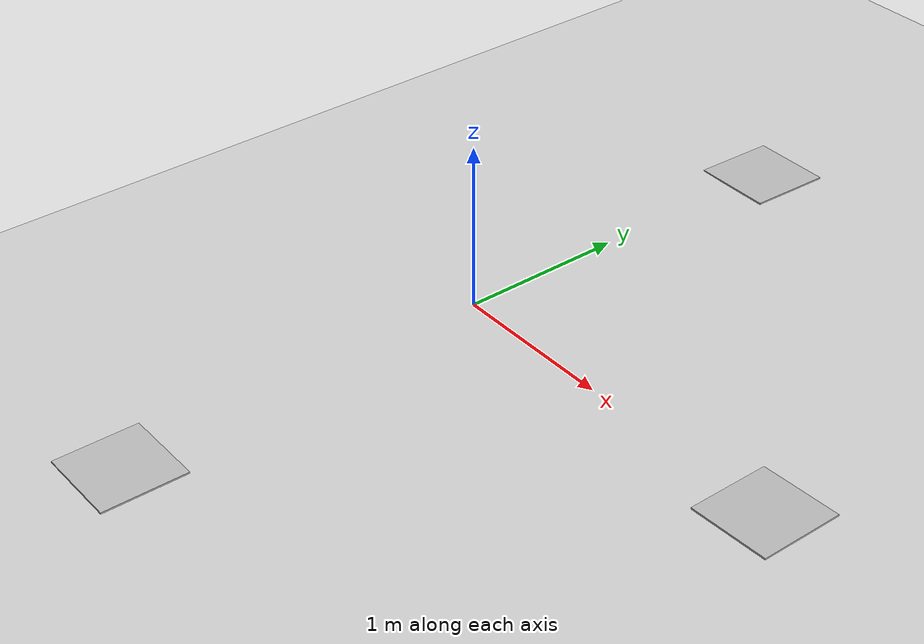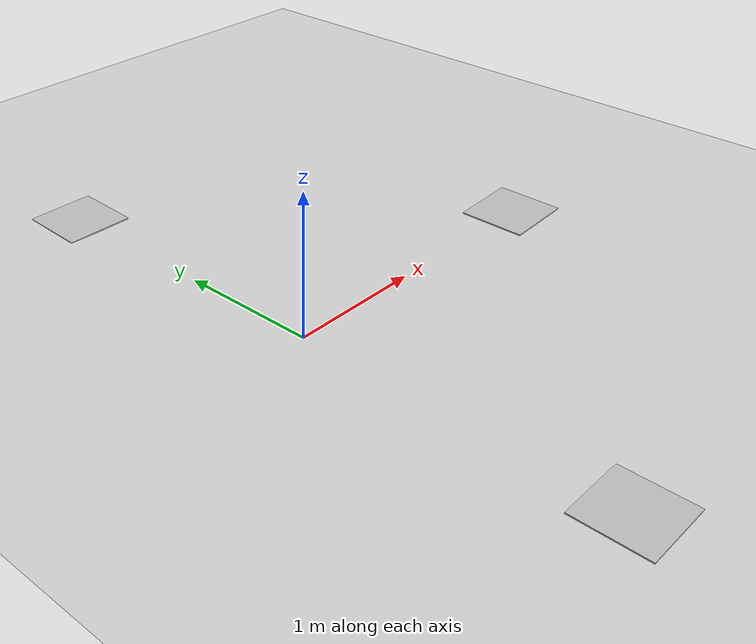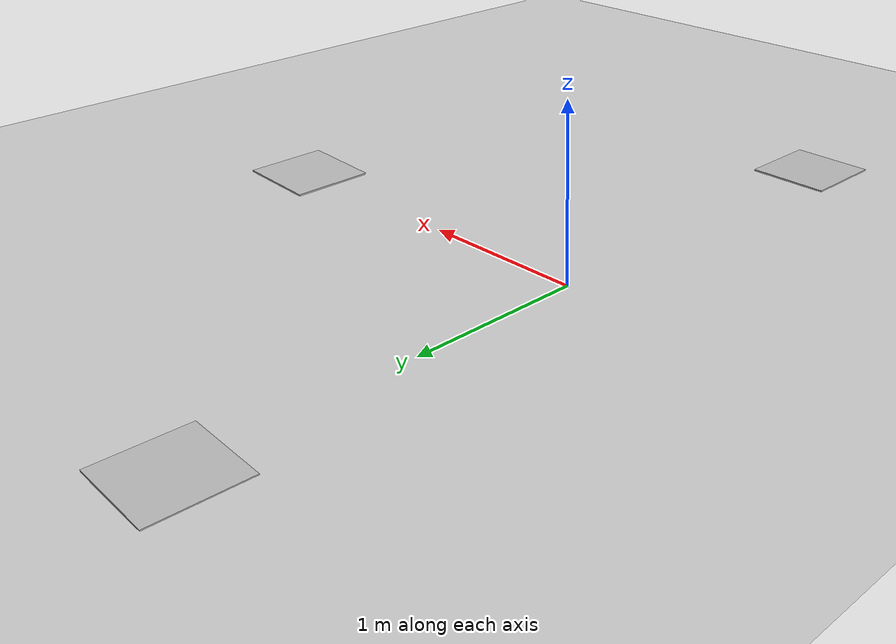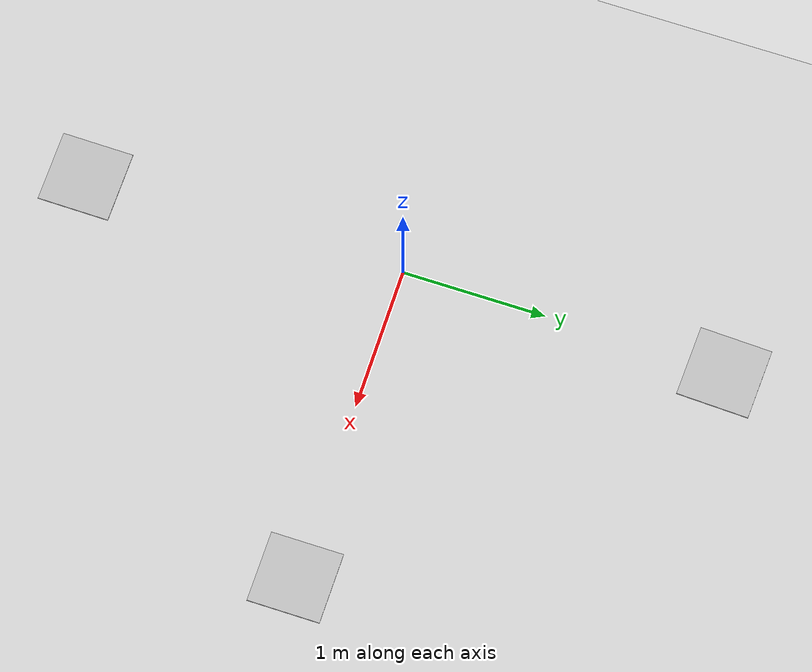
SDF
<sdf version="1.6">
 <world name="testbed">
  <light name="sun" type="directional">
   <pose>0 0 10 0 -0 0</pose>
   <diffuse>0.8 0.8 0.8 1</diffuse>
   <specular>0.1 0.1 0.1 1</specular>
   <attenuation>
    <range>1000</range>
    <constant>0.9</constant>
    <linear>0.01</linear>
    <quadratic>0.001</quadratic>
   </attenuation>
   <direction>-0.5 0.5 -1</direction>
  </light>
  <model name="ground_plane">
   <static>1</static>
   <link name="link">
    <collision name="collision">
     <geometry><plane><normal>0 0 1</normal><size>100 100</size></plane></geometry>
     <surface><friction><ode><mu>100</mu><mu2>50</mu2></ode></friction></surface>
    </collision>
    <visual name="visual">
     <cast_shadows>0</cast_shadows>
     <geometry><plane><normal>0 0 1</normal><size>100 100</size></plane></geometry>
     <material>
      <script><uri>file://media/materials/scripts/gazebo.material</uri><name>Gazebo/Grey</name></script>
     </material>
    </visual>
   </link>
  </model>
  <gravity>0 0 -9.8</gravity>
  <magnetic_field>6e-06 2.3e-05 -4.2e-05</magnetic_field>
  <atmosphere type="adiabatic"/>
  <physics name="default_physics" default="0" type="ode">
   <max_step_size>0.001</max_step_size>
   <real_time_factor>1</real_time_factor>
   <real_time_update_rate>1000</real_time_update_rate>
  </physics>
  <scene><ambient>0.4 0.4 0.4 1</ambient><background>0.7 0.7 0.7 1</background><shadows>1</shadows></scene>
  <spherical_coordinates>
   <surface_model>EARTH_WGS84</surface_model>
   <latitude_deg>0</latitude_deg>
   <longitude_deg>0</longitude_deg>
   <elevation>0</elevation>
   <heading_deg>0</heading_deg>
  </spherical_coordinates>
  <model name="Marker0">
   <static>1</static>
   <link name="link">
    <visual name="visual">
     <geometry><mesh><uri>model://marker0/meshes/Marker0.dae</uri><scale>1 1 1</scale></mesh></geometry>
    </visual>
   </link>
   <pose>2 0 0 0 1.52388 0</pose>
  </model>
  <model name="Marker0_0">
   <static>1</static>
   <link name="link">
    <visual name="visual">
     <geometry><mesh><uri>model://marker0/meshes/Marker0.dae</uri><scale>1 1 1</scale></mesh></geometry>
    </visual>
   </link>
   <pose>0.012693 -2 0 1.58052 1.56379 4e-06</pose>
  </model>
  <model name="Marker0_1">
   <static>1</static>
   <link name="link">
    <visual name="visual">
     <geometry><mesh><uri>model://marker0/meshes/Marker0.dae</uri><scale>1 1 1</scale></mesh></geometry>
    </visual>
   </link>
   <pose>0 2 0 -1.53491 1.55123 0</pose>
  </model>
 </world>
</sdf>
